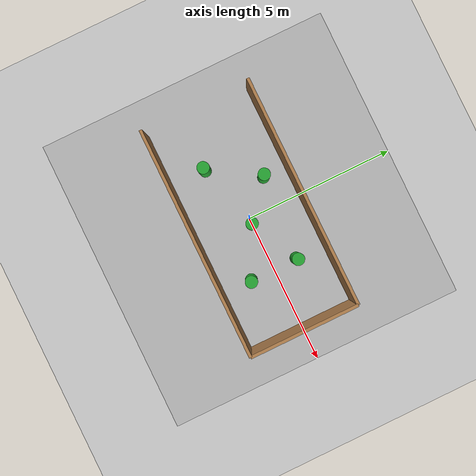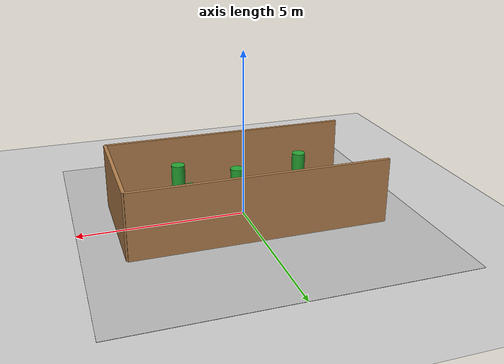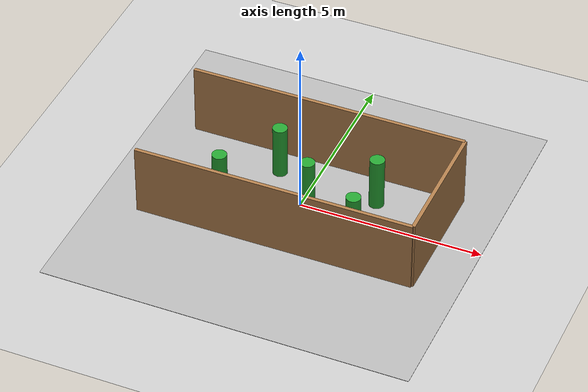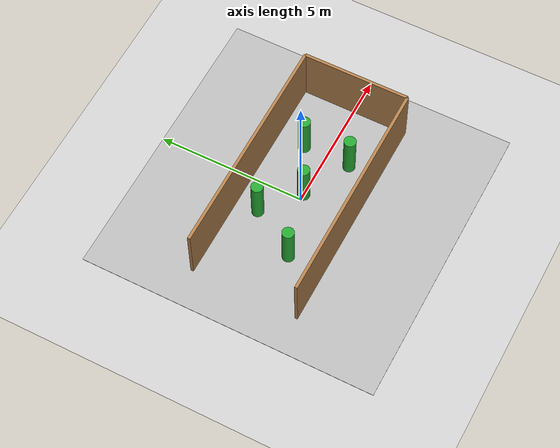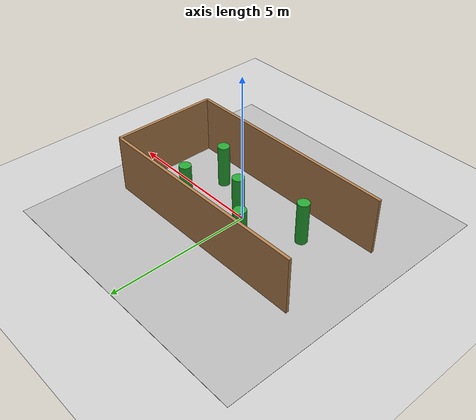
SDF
<?xml version="1.0" ?>
<sdf version="1.5">
  <world name="default">
    <!-- 全向无影子光源 -->
    <light type="directional" name="point_light">
      <pose>0.0 0 15 0 0 0</pose>
      <cast_shadows>false</cast_shadows>
    </light>
    <!-- A ground plane -->
    <include>
      <uri>model://ground_plane</uri>
    </include>

    <!-- 初始视角 -->
    <gui fullscreen='0'>
      <camera name='user_camera'>
        <pose>-7.0 0.0 18.0 0 1.3 0.0</pose>
        <view_controller>orbit</view_controller>
      </camera>
    </gui>

    <!-- 地面 -->
    <model name="ground">
      <pose>0 0 0.01 0 0 1.57</pose>
      <static>true</static>
      <link name="link">
        <visual name="visual">
          <cast_shadows>false</cast_shadows>
          <geometry>
            <box>
              <size>10 10 0.01</size>
            </box>
          </geometry>
        </visual>
      </link>
    </model>

    <physics type='ode'>
      <gravity>0 0 -9.8066</gravity>
      <ode>
        <solver>
          <type>quick</type>
          <iters>150</iters>
          <sor>1.3</sor>
          <use_dynamic_moi_rescaling>0</use_dynamic_moi_rescaling>
        </solver>
        <constraints>
          <cfm>0.00001</cfm>
          <erp>0.2</erp>
          <contact_max_correcting_vel>1000</contact_max_correcting_vel>
          <contact_surface_layer>0.01</contact_surface_layer>
        </constraints>
      </ode>
      <max_step_size>0.004</max_step_size>
      <real_time_factor>1000.0</real_time_factor>
      <real_time_update_rate>250</real_time_update_rate>
      <magnetic_field>6.0e-6 2.3e-5 -4.2e-5</magnetic_field>
    </physics>

    <!-- 前墙 -->
    <model name='wall_front'>
      <static>true</static>
      <link name="wall_front">
          <pose frame=''>3.8 0 1 0 -0 1.57</pose>
          <inertial>
            <mass>2.0</mass>
          </inertial>
          <collision name="collision">
            <geometry>
              <box>
                <size>3.6 0.1 2</size>
              </box>
            </geometry>
          </collision>
          <visual name="visual">
            <geometry>
              <box>
                <size>3.6 0.1 2</size>
              </box>
            </geometry>
            <material>
              <script>
                <uri>file://media/materials/scripts/gazebo.material</uri>
                <name>Gazebo/Wood</name>
              </script>
              <ambient>1 1 1 1</ambient>
            </material>
          </visual>
      </link>
      <link name="wall_right">
          <pose frame=''>-0 1.8 1 0 -0 0</pose>
          <inertial>
            <mass>2.0</mass>
          </inertial>
          <collision name="collision">
            <geometry>
              <box>
                <size>7.6 0.1 2</size>
              </box>
            </geometry>
          </collision>
          <visual name="visual">
            <geometry>
              <box>
                <size>7.6 0.1 2</size>
              </box>
            </geometry>
            <material>
              <script>
                <uri>file://media/materials/scripts/gazebo.material</uri>
                <name>Gazebo/Wood</name>
              </script>
              <ambient>1 1 1 1</ambient>
            </material>
          </visual>
      </link>
      <link name="wall_left">
          <pose frame=''>-0 -1.8 1 0 -0 0</pose>
          <inertial>
            <mass>2.0</mass>
          </inertial>
          <collision name="collision">
            <geometry>
              <box>
                <size>7.6 0.1 2</size>
              </box>
            </geometry>
          </collision>
          <visual name="visual">
            <geometry>
              <box>
                <size>7.6 0.1 2</size>
              </box>
            </geometry>
            <material>
              <script>
                <uri>file://media/materials/scripts/gazebo.material</uri>
                <name>Gazebo/Wood</name>
              </script>
              <ambient>1 1 1 1</ambient>
            </material>
          </visual>
      </link>
    </model>

    <!-- 柱子障碍物 -->
    <model name='obstacle'>
      <static>true</static>
      <link name='pillar_1'>
        <pose frame=''>-2.0 -0.6 0.75 0 -0 0</pose>
        <visual name='visual'>
          <geometry>
            <cylinder>
              <radius>0.2</radius>
              <length>1.5</length>
            </cylinder>
          </geometry>
          <material>
            <script>
              <uri>file://media/materials/scripts/gazebo.material</uri>
              <name>Gazebo/Green</name>
            </script>
          </material>
        </visual>
        <collision name='collision'>
          <geometry>
            <cylinder>
              <radius>0.2</radius>
              <length>1.5</length>
            </cylinder>
          </geometry>
        </collision>
      </link>
      <link name='pillar_2'>
        <pose frame=''>-1.0 1.0 0.75 0 -0 0</pose>
        <visual name='visual'>
          <geometry>
            <cylinder>
              <radius>0.2</radius>
              <length>1.5</length>
            </cylinder>
          </geometry>
          <material>
            <script>
              <uri>file://media/materials/scripts/gazebo.material</uri>
              <name>Gazebo/Green</name>
            </script>
          </material>
        </visual>
        <collision name='collision'>
          <geometry>
            <cylinder>
              <radius>0.2</radius>
              <length>1.5</length>
            </cylinder>
          </geometry>
        </collision>
      </link>
      <link name='pillar_3'>
        <pose frame=''>0.2 -0.0 0.75 0 -0 0</pose>
        <visual name='visual'>
          <geometry>
            <cylinder>
              <radius>0.2</radius>
              <length>1.5</length>
            </cylinder>
          </geometry>
          <material>
            <script>
              <uri>file://media/materials/scripts/gazebo.material</uri>
              <name>Gazebo/Green</name>
            </script>
          </material>
        </visual>
        <collision name='collision'>
          <geometry>
            <cylinder>
              <radius>0.2</radius>
              <length>1.5</length>
            </cylinder>
          </geometry>
        </collision>
      </link>

      <link name='pillar_4'>
        <pose frame=''>1.8 0.8 0.75 0 -0 0</pose>
        <visual name='visual'>
          <geometry>
            <cylinder>
              <radius>0.2</radius>
              <length>1.5</length>
            </cylinder>
          </geometry>
          <material>
            <script>
              <uri>file://media/materials/scripts/gazebo.material</uri>
              <name>Gazebo/Green</name>
            </script>
          </material>
        </visual>
        <collision name='collision'>
          <geometry>
            <cylinder>
              <radius>0.2</radius>
              <length>1.5</length>
            </cylinder>
          </geometry>
        </collision>
      </link>

      <link name='pillar_5'>
        <pose frame=''>1.8 -0.8 0.75 0 -0 0</pose>
        <visual name='visual'>
          <geometry>
            <cylinder>
              <radius>0.2</radius>
              <length>1.5</length>
            </cylinder>
          </geometry>
          <material>
            <script>
              <uri>file://media/materials/scripts/gazebo.material</uri>
              <name>Gazebo/Green</name>
            </script>
          </material>
        </visual>
        <collision name='collision'>
          <geometry>
            <cylinder>
              <radius>0.2</radius>
              <length>1.5</length>
            </cylinder>
          </geometry>
        </collision>
      </link>
    </model>

  </world>
</sdf>
